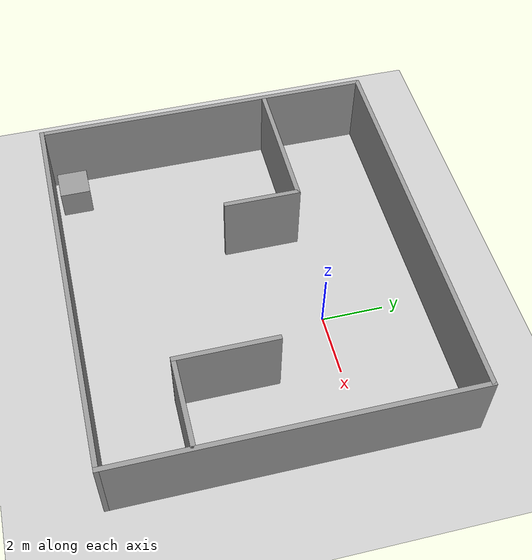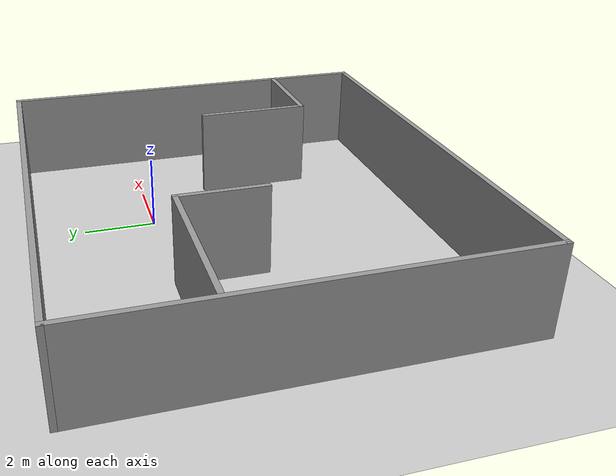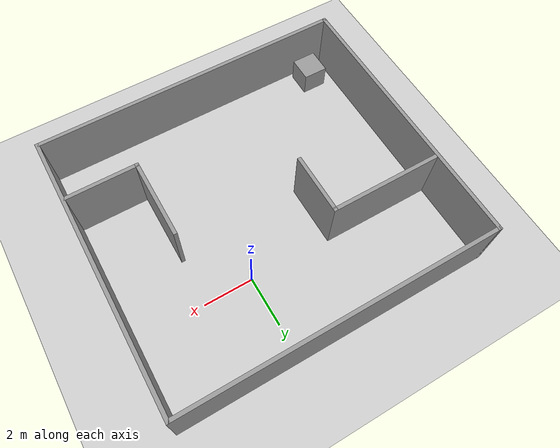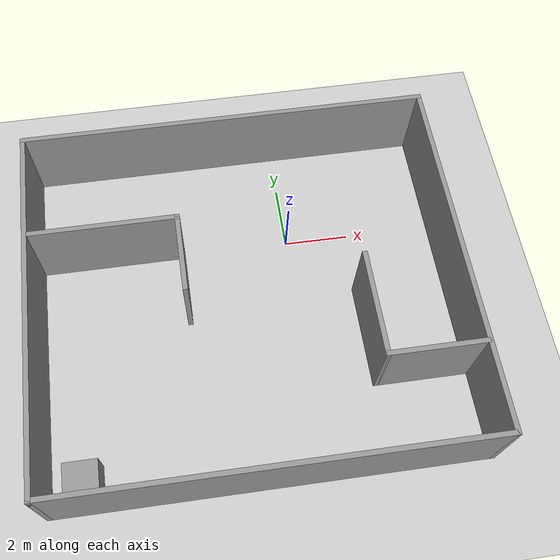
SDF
<sdf version="1.6">
 <world name="default">
  <light name="sun" type="directional">
   <pose>0 0 10 0 -0 0</pose>
   <diffuse>0.8 0.8 0.8 1</diffuse>
   <specular>0.1 0.1 0.1 1</specular>
   <attenuation>
    <range>1000</range>
    <constant>0.9</constant>
    <linear>0.01</linear>
    <quadratic>0.001</quadratic>
   </attenuation>
   <direction>-0.5 0.5 -1</direction>
  </light>
  <model name="ground_plane">
   <static>1</static>
   <link name="link">
    <collision name="collision">
     <geometry><plane><normal>0 0 1</normal><size>100 100</size></plane></geometry>
     <surface><friction><ode><mu>100</mu><mu2>50</mu2></ode></friction></surface>
    </collision>
    <visual name="visual">
     <cast_shadows>0</cast_shadows>
     <geometry><plane><normal>0 0 1</normal><size>100 100</size></plane></geometry>
     <material>
      <script><uri>file://media/materials/scripts/gazebo.material</uri><name>Gazebo/Grey</name></script>
     </material>
    </visual>
   </link>
  </model>
  <gravity>0 0 -9.8</gravity>
  <magnetic_field>6e-06 2.3e-05 -4.2e-05</magnetic_field>
  <atmosphere type="adiabatic"/>
  <physics name="default_physics" default="0" type="ode">
   <max_step_size>0.001</max_step_size>
   <real_time_factor>1</real_time_factor>
   <real_time_update_rate>1000</real_time_update_rate>
  </physics>
  <scene><ambient>0.4 0.4 0.4 1</ambient><background>0.7 0.7 0.7 1</background><shadows>1</shadows></scene>
  <spherical_coordinates>
   <surface_model>EARTH_WGS84</surface_model>
   <latitude_deg>0</latitude_deg>
   <longitude_deg>0</longitude_deg>
   <elevation>0</elevation>
   <heading_deg>0</heading_deg>
  </spherical_coordinates>
  <model name="world1.launch">
   <pose>-1.56 -2.15 0 0 -0 0</pose>
   <link name="Wall_10">
    <collision name="Wall_10_Collision">
     <geometry><box><size>11.25 0.15 2.5</size></box></geometry>
     <pose>0 0 1.25 0 -0 0</pose>
    </collision>
    <visual name="Wall_10_Visual">
     <pose>0 0 1.25 0 -0 0</pose>
     <geometry><box><size>11.25 0.15 2.5</size></box></geometry>
     <material>
      <script><uri>file://media/materials/scripts/gazebo.material</uri><name>Gazebo/Grey</name></script>
      <ambient>1 1 1 1</ambient>
     </material>
    </visual>
    <pose>6.3 0 0 0 0 -1.5708</pose>
   </link>
   <link name="Wall_12">
    <collision name="Wall_12_Collision">
     <geometry><box><size>4.5 0.15 2.5</size></box></geometry>
     <pose>0 0 1.25 0 -0 0</pose>
    </collision>
    <visual name="Wall_12_Visual">
     <pose>0 0 1.25 0 -0 0</pose>
     <geometry><box><size>4.5 0.15 2.5</size></box></geometry>
     <material>
      <script><uri>file://media/materials/scripts/gazebo.material</uri><name>Gazebo/Grey</name></script>
      <ambient>1 1 1 1</ambient>
     </material>
    </visual>
    <pose>-3.98502 2.14411 0 0 -0 0</pose>
   </link>
   <link name="Wall_13">
    <collision name="Wall_13_Collision">
     <geometry><box><size>2.5 0.15 2.5</size></box></geometry>
     <pose>0 0 1.25 0 -0 0</pose>
    </collision>
    <visual name="Wall_13_Visual">
     <pose>0 0 1.25 0 -0 0</pose>
     <geometry><box><size>2.5 0.15 2.5</size></box></geometry>
     <material>
      <script><uri>file://media/materials/scripts/gazebo.material</uri><name>Gazebo/Grey</name></script>
      <ambient>1 1 1 1</ambient>
     </material>
    </visual>
    <pose>-1.81002 0.969105 0 0 0 -1.5708</pose>
   </link>
   <link name="Wall_15">
    <collision name="Wall_15_Collision">
     <geometry><box><size>3.25 0.15 2.5</size></box></geometry>
     <pose>0 0 1.25 0 -0 0</pose>
    </collision>
    <visual name="Wall_15_Visual">
     <pose>0 0 1.25 0 -0 0</pose>
     <geometry><box><size>3.25 0.15 2.5</size></box></geometry>
     <material>
      <script><uri>file://media/materials/scripts/gazebo.material</uri><name>Gazebo/Grey</name></script>
      <ambient>1 1 1 1</ambient>
     </material>
    </visual>
    <pose>3.44531 -1.39426 0 0 0 -1.5708</pose>
   </link>
   <link name="Wall_16">
    <collision name="Wall_16_Collision">
     <geometry><box><size>2.92934 0.15 2.5</size></box></geometry>
     <pose>0 0 1.25 0 -0 0</pose>
    </collision>
    <visual name="Wall_16_Visual">
     <pose>0 0 1.25 0 -0 0</pose>
     <geometry><box><size>2.92934 0.15 2.5</size></box></geometry>
     <material>
      <script><uri>file://media/materials/scripts/gazebo.material</uri><name>Gazebo/Grey</name></script>
      <ambient>1 1 1 1</ambient>
     </material>
    </visual>
    <pose>4.86557 -2.94426 0 0 -0 0</pose>
   </link>
   <link name="Wall_5">
    <collision name="Wall_5_Collision">
     <geometry><box><size>11.25 0.15 2.5</size></box></geometry>
     <pose>0 0 1.25 0 -0 0</pose>
    </collision>
    <visual name="Wall_5_Visual">
     <pose>0 0 1.25 0 -0 0</pose>
     <geometry><box><size>11.25 0.15 2.5</size></box></geometry>
     <material>
      <script><uri>file://media/materials/scripts/gazebo.material</uri><name>Gazebo/Grey</name></script>
      <ambient>1 1 1 1</ambient>
     </material>
    </visual>
    <pose>-6.3 0 0 0 0 -1.5708</pose>
   </link>
   <link name="Wall_6">
    <collision name="Wall_6_Collision">
     <geometry><box><size>12.75 0.15 2.5</size></box></geometry>
     <pose>0 0 1.25 0 -0 0</pose>
    </collision>
    <visual name="Wall_6_Visual">
     <pose>0 0 1.25 0 -0 0</pose>
     <geometry><box><size>12.75 0.15 2.5</size></box></geometry>
     <material>
      <script><uri>file://media/materials/scripts/gazebo.material</uri><name>Gazebo/Grey</name></script>
      <ambient>1 1 1 1</ambient>
     </material>
    </visual>
    <pose>0 -5.55 0 0 -0 0</pose>
   </link>
   <link name="Wall_9">
    <collision name="Wall_9_Collision">
     <geometry><box><size>12.75 0.15 2.5</size></box></geometry>
     <pose>0 0 1.25 0 -0 0</pose>
    </collision>
    <visual name="Wall_9_Visual">
     <pose>0 0 1.25 0 -0 0</pose>
     <geometry><box><size>12.75 0.15 2.5</size></box></geometry>
     <material>
      <script><uri>file://media/materials/scripts/gazebo.material</uri><name>Gazebo/Grey</name></script>
      <ambient>1 1 1 1</ambient>
     </material>
    </visual>
    <pose>0 5.55 0 0 -0 0</pose>
   </link>
   <static>1</static>
  </model>
  <model name="unit_box_0">
   <pose>-6.80983 -6.97569 0.5 0 -0 0</pose>
   <link name="link">
    <inertial>
     <mass>1</mass>
     <inertia>
      <ixx>0.166667</ixx>
      <ixy>0</ixy>
      <ixz>0</ixz>
      <iyy>0.166667</iyy>
      <iyz>0</iyz>
      <izz>0.166667</izz>
     </inertia>
    </inertial>
    <collision name="collision"><geometry><box><size>1 1 1</size></box></geometry></collision>
    <visual name="visual">
     <geometry><box><size>1 1 1</size></box></geometry>
     <material>
      <script><name>Gazebo/Grey</name><uri>file://media/materials/scripts/gazebo.material</uri></script>
     </material>
    </visual>
   </link>
  </model>
 </world>
</sdf>
